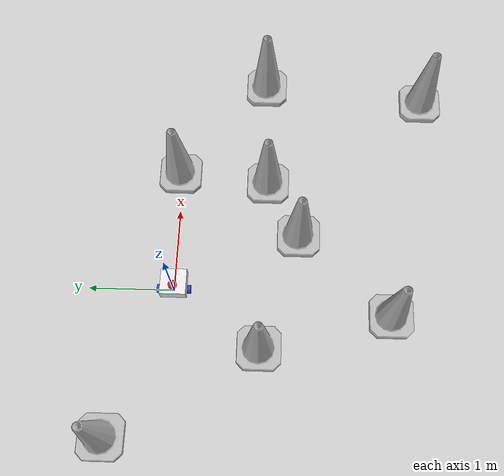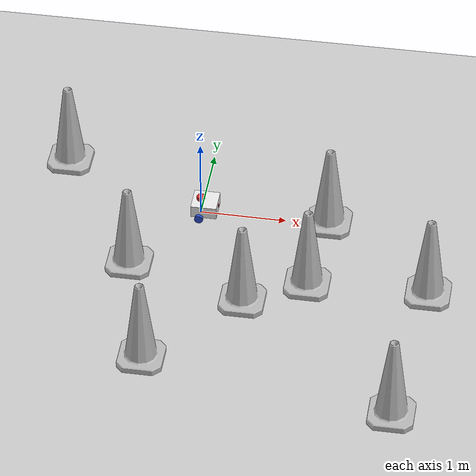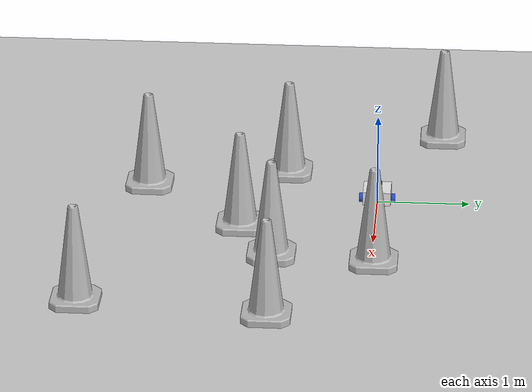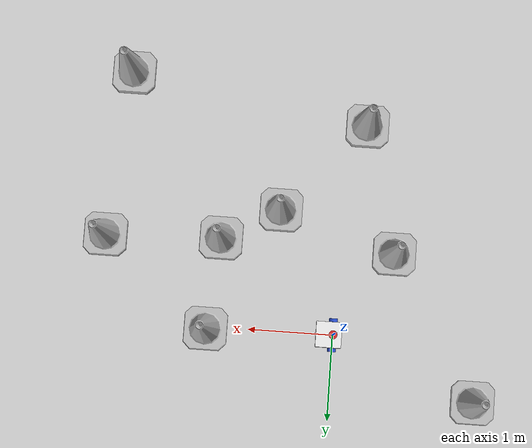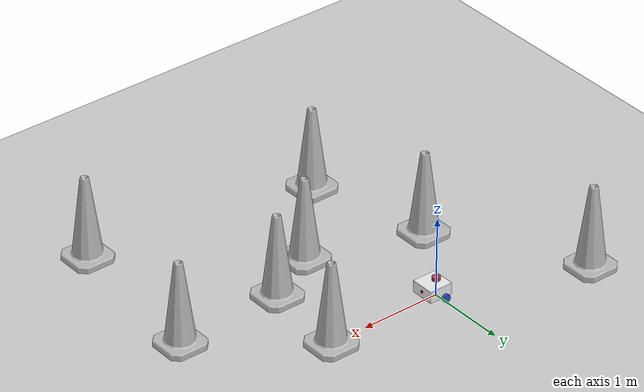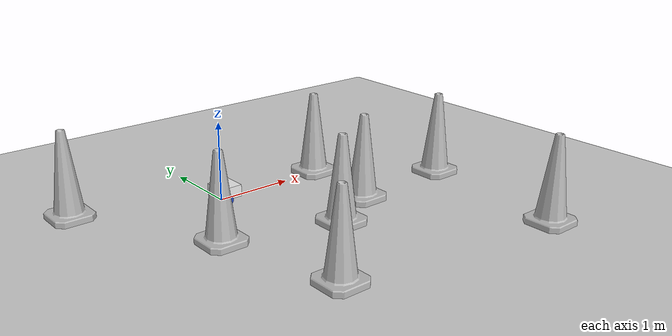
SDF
<sdf version="1.7">
 <world name="default">
  <light name="sun" type="directional">
   <pose>0 0 10 0 -0 0</pose>
   <diffuse>0.8 0.8 0.8 1</diffuse>
   <specular>0.2 0.2 0.2 1</specular>
   <attenuation>
    <range>1000</range>
    <constant>0.9</constant>
    <linear>0.01</linear>
    <quadratic>0.001</quadratic>
   </attenuation>
   <direction>-0.5 0.1 -0.9</direction>
   <spot><inner_angle>0</inner_angle><outer_angle>0</outer_angle><falloff>0</falloff></spot>
  </light>
  <model name="ground_plane">
   <static>1</static>
   <link name="link">
    <collision name="collision">
     <geometry><plane><normal>0 0 1</normal><size>100 100</size></plane></geometry>
     <surface><friction><ode><mu>100</mu><mu2>50</mu2></ode></friction></surface>
    </collision>
    <visual name="visual">
     <cast_shadows>0</cast_shadows>
     <geometry><plane><normal>0 0 1</normal><size>100 100</size></plane></geometry>
     <material>
      <script><uri>file://media/materials/scripts/gazebo.material</uri><name>Gazebo/Grey</name></script>
     </material>
    </visual>
   </link>
  </model>
  <gravity>0 0 -9.8</gravity>
  <magnetic_field>6e-06 2.3e-05 -4.2e-05</magnetic_field>
  <atmosphere type="adiabatic"/>
  <physics type="ode">
   <max_step_size>0.001</max_step_size>
   <real_time_factor>1</real_time_factor>
   <real_time_update_rate>1000</real_time_update_rate>
  </physics>
  <scene><ambient>0.4 0.4 0.4 1</ambient><background>0.7 0.7 0.7 1</background><shadows>1</shadows></scene>
  <audio><device>default</device></audio>
  <spherical_coordinates>
   <surface_model>EARTH_WGS84</surface_model>
   <latitude_deg>0</latitude_deg>
   <longitude_deg>0</longitude_deg>
   <elevation>0</elevation>
   <heading_deg>0</heading_deg>
  </spherical_coordinates>
  <model name="my_bot">
   <link name="base_link">
    <inertial>
     <pose>0.055714 0 0.078571 0 -0 0</pose>
     <mass>0.7</mass>
     <inertia>
      <ixx>0.0064169</ixx>
      <ixy>0</ixy>
      <ixz>0.00118929</ixz>
      <iyy>0.00745405</iyy>
      <iyz>0</iyz>
      <izz>0.00876214</izz>
     </inertia>
    </inertial>
    <collision name="base_link_fixed_joint_lump__chassis_collision">
     <pose>0.05 0 0.075 0 -0 0</pose>
     <geometry><box><size>0.3 0.3 0.15</size></box></geometry>
    </collision>
    <collision name="base_link_fixed_joint_lump__caster_wheel_collision_1">
     <pose>0.14 0 0 0 -0 0</pose>
     <geometry><sphere><radius>0.05</radius></sphere></geometry>
     <surface><friction><ode><mu>0.001</mu><mu2>0.001</mu2></ode></friction></surface>
    </collision>
    <collision name="base_link_fixed_joint_lump__laser_frame_collision_2">
     <pose>0 0 0.175 0 -0 0</pose>
     <geometry><cylinder><length>0.04</length><radius>0.05</radius></cylinder></geometry>
    </collision>
    <visual name="base_link_fixed_joint_lump__chassis_visual">
     <pose>0.05 0 0.075 0 -0 0</pose>
     <geometry><box><size>0.3 0.3 0.15</size></box></geometry>
     <material>
      <script><name>Gazebo/White</name><uri>file://media/materials/scripts/gazebo.material</uri></script>
     </material>
    </visual>
    <visual name="base_link_fixed_joint_lump__camera_link_visual_1">
     <pose>0.205 0 0.08 0 -0 0</pose>
     <geometry><box><size>0.01 0.03 0.03</size></box></geometry>
     <material>
      <script><name>Gazebo/Red</name><uri>file://media/materials/scripts/gazebo.material</uri></script>
     </material>
    </visual>
    <visual name="base_link_fixed_joint_lump__caster_wheel_visual_2">
     <pose>0.14 0 0 0 -0 0</pose>
     <geometry><sphere><radius>0.05</radius></sphere></geometry>
     <material>
      <script><name>Gazebo/Black</name><uri>file://media/materials/scripts/gazebo.material</uri></script>
     </material>
    </visual>
    <visual name="base_link_fixed_joint_lump__laser_frame_visual_3">
     <pose>0 0 0.175 0 -0 0</pose>
     <geometry><cylinder><length>0.04</length><radius>0.05</radius></cylinder></geometry>
     <material>
      <script><name>Gazebo/Red</name><uri>file://media/materials/scripts/gazebo.material</uri></script>
     </material>
    </visual>
    <sensor name="camera" type="camera">
     <visualize>0</visualize>
     <update_rate>10</update_rate>
     <camera>
      <horizontal_fov>1.089</horizontal_fov>
      <image><format>R8G8B8</format><width>640</width><height>480</height></image>
      <clip><near>0.04</near><far>8</far></clip>
     </camera>
     <plugin name="camera_controller" filename="libgazebo_ros_camera.so">
      <frame_name>camera_link_optical</frame_name>
     </plugin>
     <pose>0.205 0 0.08 0 -0 0</pose>
    </sensor>
    <sensor name="laser" type="ray">
     <visualize>1</visualize>
     <update_rate>10</update_rate>
     <ray>
      <scan>
       <horizontal>
        <samples>360</samples>
        <min_angle>-3.14</min_angle>
        <max_angle>3.14</max_angle>
        <resolution>1</resolution>
       </horizontal>
       <vertical><samples>1</samples><min_angle>0</min_angle><max_angle>0</max_angle></vertical>
      </scan>
      <range><min>0.3</min><max>12</max></range>
     </ray>
     <plugin name="laser_controller" filename="libgazebo_ros_ray_sensor.so">
      <ros><argument>~/out:=scan</argument></ros>
      <output_type>sensor_msgs/LaserScan</output_type>
      <frame_name>laser_frame</frame_name>
     </plugin>
     <pose>0 0 0.175 0 -0 0</pose>
    </sensor>
   </link>
   <joint name="left_wheel_joint" type="revolute">
    <pose relative_to="base_link">0 0.175 0 -1.5708 0 0</pose>
    <parent>base_link</parent>
    <child>left_wheel</child>
    <axis>
     <xyz>0 0 1</xyz>
     <limit><lower>-1e+16</lower><upper>1e+16</upper></limit>
     <dynamics><spring_reference>0</spring_reference><spring_stiffness>0</spring_stiffness></dynamics>
    </axis>
   </joint>
   <link name="left_wheel">
    <pose relative_to="left_wheel_joint">0 0 0 0 -0 0</pose>
    <inertial>
     <mass>0.1</mass>
     <inertia>
      <ixx>7.58333e-05</ixx>
      <ixy>0</ixy>
      <ixz>0</ixz>
      <iyy>7.58333e-05</iyy>
      <iyz>0</iyz>
      <izz>0.000125</izz>
     </inertia>
    </inertial>
    <collision name="left_wheel_collision">
     <geometry><cylinder><length>0.04</length><radius>0.05</radius></cylinder></geometry>
    </collision>
    <visual name="left_wheel_visual">
     <geometry><cylinder><length>0.04</length><radius>0.05</radius></cylinder></geometry>
     <material>
      <script><name>Gazebo/Blue</name><uri>file://media/materials/scripts/gazebo.material</uri></script>
     </material>
    </visual>
   </link>
   <joint name="right_wheel_joint" type="revolute">
    <pose relative_to="base_link">0 -0.175 0 1.5708 -0 0</pose>
    <parent>base_link</parent>
    <child>right_wheel</child>
    <axis>
     <xyz>0 0 -1</xyz>
     <limit><lower>-1e+16</lower><upper>1e+16</upper></limit>
     <dynamics><spring_reference>0</spring_reference><spring_stiffness>0</spring_stiffness></dynamics>
    </axis>
   </joint>
   <link name="right_wheel">
    <pose relative_to="right_wheel_joint">0 0 0 0 -0 0</pose>
    <inertial>
     <mass>0.1</mass>
     <inertia>
      <ixx>7.58333e-05</ixx>
      <ixy>0</ixy>
      <ixz>0</ixz>
      <iyy>7.58333e-05</iyy>
      <iyz>0</iyz>
      <izz>0.000125</izz>
     </inertia>
    </inertial>
    <collision name="right_wheel_collision">
     <geometry><cylinder><length>0.04</length><radius>0.05</radius></cylinder></geometry>
    </collision>
    <visual name="right_wheel_visual">
     <geometry><cylinder><length>0.04</length><radius>0.05</radius></cylinder></geometry>
     <material>
      <script><name>Gazebo/Blue</name><uri>file://media/materials/scripts/gazebo.material</uri></script>
     </material>
    </visual>
   </link>
   <plugin name="diff_drive" filename="libgazebo_ros_diff_drive.so">
    <left_joint>left_wheel_joint</left_joint>
    <right_joint>right_wheel_joint</right_joint>
    <wheel_separation>0.35</wheel_separation>
    <wheel_diameter>0.1</wheel_diameter>
    <max_wheel_torque>500</max_wheel_torque>
    <max_wheel_acceleration>10.0</max_wheel_acceleration>
    <odometry_frame>odom</odometry_frame>
    <robot_base_frame>base_link</robot_base_frame>
    <publish_odom>1</publish_odom>
    <publish_odom_tf>1</publish_odom_tf>
    <publish_wheel_tf>1</publish_wheel_tf>
   </plugin>
   <frame name="base_footprint_joint" attached_to="base_link"/>
   <frame name="base_footprint" attached_to="base_footprint_joint"/>
   <frame name="camera_optical_joint" attached_to="camera_link"><pose>0 0 0 -1.5708 -0 -1.5708</pose></frame>
   <frame name="camera_link_optical" attached_to="camera_optical_joint"/>
   <frame name="camera_joint" attached_to="chassis"><pose>0.305 0 0.08 0 -0 0</pose></frame>
   <frame name="camera_link" attached_to="camera_joint"/>
   <frame name="caster_wheel_joint" attached_to="chassis"><pose>0.24 0 0 0 -0 0</pose></frame>
   <frame name="caster_wheel" attached_to="caster_wheel_joint"/>
   <frame name="laser_joint" attached_to="chassis"><pose>0.1 0 0.175 0 -0 0</pose></frame>
   <frame name="laser_frame" attached_to="laser_joint"/>
   <frame name="chassis_joint" attached_to="base_link"><pose>-0.1 0 0 0 -0 0</pose></frame>
   <frame name="chassis" attached_to="chassis_joint"/>
   <pose>0.002376 1.9e-05 0.05 0 1.2e-05 3.9e-05</pose>
  </model>
  <model name="Construction Cone">
   <link name="link">
    <collision name="collision">
     <geometry>
      <mesh><scale>10 10 10</scale><uri>model://construction_cone/meshes/construction_cone.dae</uri></mesh>
     </geometry>
    </collision>
    <visual name="visual">
     <geometry>
      <mesh><scale>10 10 10</scale><uri>model://construction_cone/meshes/construction_cone.dae</uri></mesh>
     </geometry>
    </visual>
    <inertial>
     <inertia><ixx>1</ixx><ixy>0</ixy><ixz>0</ixz><iyy>1</iyy><iyz>0</iyz><izz>1</izz></inertia>
     <mass>1</mass>
    </inertial>
   </link>
   <pose>0.710001 -1.43758 -0 0 -0 0</pose>
  </model>
  <model name="Construction Cone_0">
   <link name="link">
    <collision name="collision">
     <geometry>
      <mesh><scale>10 10 10</scale><uri>model://construction_cone/meshes/construction_cone.dae</uri></mesh>
     </geometry>
    </collision>
    <visual name="visual">
     <geometry>
      <mesh><scale>10 10 10</scale><uri>model://construction_cone/meshes/construction_cone.dae</uri></mesh>
     </geometry>
    </visual>
    <inertial>
     <inertia><ixx>1</ixx><ixy>0</ixy><ixz>0</ixz><iyy>1</iyy><iyz>0</iyz><izz>1</izz></inertia>
     <mass>1</mass>
    </inertial>
   </link>
   <pose>1.39438 -1.05514 -0 0 -0 0</pose>
  </model>
  <model name="Construction Cone_1">
   <link name="link">
    <collision name="collision">
     <geometry>
      <mesh><scale>10 10 10</scale><uri>model://construction_cone/meshes/construction_cone.dae</uri></mesh>
     </geometry>
    </collision>
    <visual name="visual">
     <geometry>
      <mesh><scale>10 10 10</scale><uri>model://construction_cone/meshes/construction_cone.dae</uri></mesh>
     </geometry>
    </visual>
    <inertial>
     <inertia><ixx>1</ixx><ixy>0</ixy><ixz>0</ixz><iyy>1</iyy><iyz>0</iyz><izz>1</izz></inertia>
     <mass>1</mass>
    </inertial>
   </link>
   <pose>1.49885 0.025672 -0 0 -1e-06 0</pose>
  </model>
  <model name="Construction Cone_2">
   <link name="link">
    <collision name="collision">
     <geometry>
      <mesh><scale>10 10 10</scale><uri>model://construction_cone/meshes/construction_cone.dae</uri></mesh>
     </geometry>
    </collision>
    <visual name="visual">
     <geometry>
      <mesh><scale>10 10 10</scale><uri>model://construction_cone/meshes/construction_cone.dae</uri></mesh>
     </geometry>
    </visual>
    <inertial>
     <inertia><ixx>1</ixx><ixy>0</ixy><ixz>0</ixz><iyy>1</iyy><iyz>0</iyz><izz>1</izz></inertia>
     <mass>1</mass>
    </inertial>
   </link>
   <pose>-0.66234 -1.00711 0 -1e-06 0 0</pose>
  </model>
  <model name="Construction Cone_3">
   <link name="link">
    <collision name="collision">
     <geometry>
      <mesh><scale>10 10 10</scale><uri>model://construction_cone/meshes/construction_cone.dae</uri></mesh>
     </geometry>
    </collision>
    <visual name="visual">
     <geometry>
      <mesh><scale>10 10 10</scale><uri>model://construction_cone/meshes/construction_cone.dae</uri></mesh>
     </geometry>
    </visual>
    <inertial>
     <inertia><ixx>1</ixx><ixy>0</ixy><ixz>0</ixz><iyy>1</iyy><iyz>0</iyz><izz>1</izz></inertia>
     <mass>1</mass>
    </inertial>
   </link>
   <pose>-1.67884 0.672376 -0 0 -1e-06 0</pose>
  </model>
  <model name="Construction Cone_4">
   <link name="link">
    <collision name="collision">
     <geometry>
      <mesh><scale>10 10 10</scale><uri>model://construction_cone/meshes/construction_cone.dae</uri></mesh>
     </geometry>
    </collision>
    <visual name="visual">
     <geometry>
      <mesh><scale>10 10 10</scale><uri>model://construction_cone/meshes/construction_cone.dae</uri></mesh>
     </geometry>
    </visual>
    <inertial>
     <inertia><ixx>1</ixx><ixy>0</ixy><ixz>0</ixz><iyy>1</iyy><iyz>0</iyz><izz>1</izz></inertia>
     <mass>1</mass>
    </inertial>
   </link>
   <pose>2.5837 -2.97493 -9e-06 -1e-06 -0 -0</pose>
  </model>
  <model name="Construction Cone_5">
   <link name="link">
    <collision name="collision">
     <geometry>
      <mesh><scale>10 10 10</scale><uri>model://construction_cone/meshes/construction_cone.dae</uri></mesh>
     </geometry>
    </collision>
    <visual name="visual">
     <geometry>
      <mesh><scale>10 10 10</scale><uri>model://construction_cone/meshes/construction_cone.dae</uri></mesh>
     </geometry>
    </visual>
    <inertial>
     <inertia><ixx>1</ixx><ixy>0</ixy><ixz>0</ixz><iyy>1</iyy><iyz>0</iyz><izz>1</izz></inertia>
     <mass>1</mass>
    </inertial>
   </link>
   <pose>2.76519 -1.00511 -0 0 -0 0</pose>
  </model>
  <model name="Construction Cone_6">
   <link name="link">
    <collision name="collision">
     <geometry>
      <mesh><scale>10 10 10</scale><uri>model://construction_cone/meshes/construction_cone.dae</uri></mesh>
     </geometry>
    </collision>
    <visual name="visual">
     <geometry>
      <mesh><scale>10 10 10</scale><uri>model://construction_cone/meshes/construction_cone.dae</uri></mesh>
     </geometry>
    </visual>
    <inertial>
     <inertia><ixx>1</ixx><ixy>0</ixy><ixz>0</ixz><iyy>1</iyy><iyz>0</iyz><izz>1</izz></inertia>
     <mass>1</mass>
    </inertial>
   </link>
   <pose>-0.249649 -2.5159 -0 0 -1e-06 0</pose>
  </model>
 </world>
</sdf>
